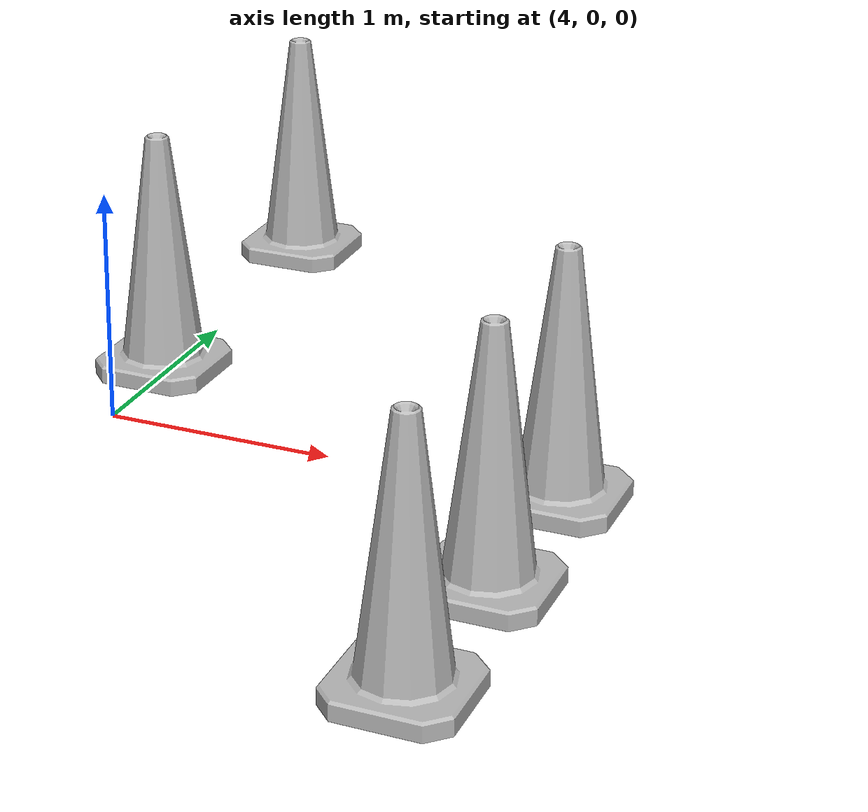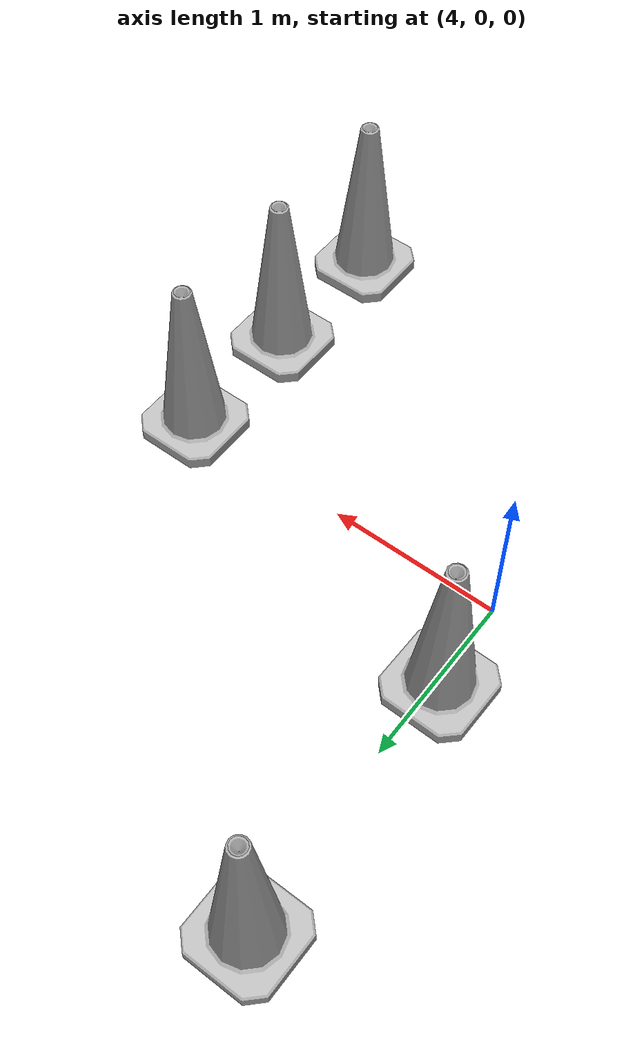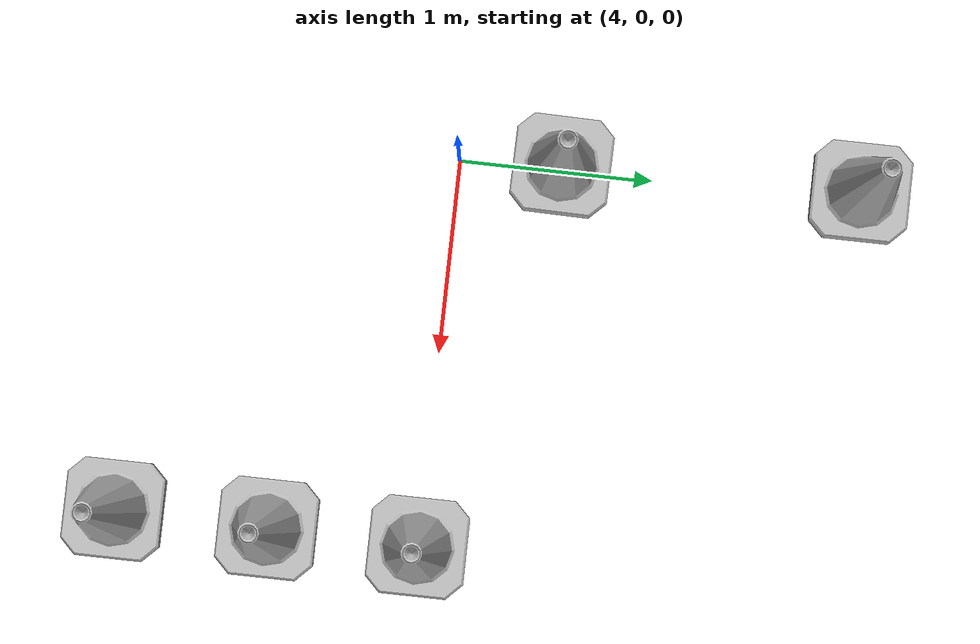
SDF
<sdf version="1.4">
 <world name="default">
  <model name="Construction Cone_1">
   <link name="link">
    <collision name="collision">
     <geometry>
      <mesh><scale>10 10 10</scale><uri>model://construction_cone/meshes/construction_cone.dae</uri></mesh>
     </geometry>
    </collision>
    <visual name="visual">
     <geometry>
      <mesh><scale>10 10 10</scale><uri>model://construction_cone/meshes/construction_cone.dae</uri></mesh>
     </geometry>
    </visual>
    <velocity_decay><linear>0</linear><angular>0</angular></velocity_decay>
    <inertial>
     <inertia><ixx>1</ixx><ixy>0</ixy><ixz>0</ixz><iyy>1</iyy><iyz>0</iyz><izz>1</izz></inertia>
     <mass>1</mass>
    </inertial>
   </link>
   <pose>3.97138 0.526479 -0.000878 6e-06 1e-06 -0.016596</pose>
   <static>0</static>
  </model>
  <model name="Construction Cone_3">
   <link name="link">
    <collision name="collision">
     <geometry>
      <mesh><scale>10 10 10</scale><uri>model://construction_cone/meshes/construction_cone.dae</uri></mesh>
     </geometry>
    </collision>
    <visual name="visual">
     <geometry>
      <mesh><scale>10 10 10</scale><uri>model://construction_cone/meshes/construction_cone.dae</uri></mesh>
     </geometry>
    </visual>
    <velocity_decay><linear>0</linear><angular>0</angular></velocity_decay>
    <inertial>
     <inertia><ixx>1</ixx><ixy>0</ixy><ixz>0</ixz><iyy>1</iyy><iyz>0</iyz><izz>1</izz></inertia>
     <mass>1</mass>
    </inertial>
   </link>
   <pose>3.94204 2.07112 -0.000878 6e-06 1e-06 -1e-06</pose>
   <static>0</static>
  </model>
  <model name="Construction Cone_5">
   <link name="link">
    <collision name="collision">
     <geometry>
      <mesh><scale>10 10 10</scale><uri>model://construction_cone/meshes/construction_cone.dae</uri></mesh>
     </geometry>
    </collision>
    <visual name="visual">
     <geometry>
      <mesh><scale>10 10 10</scale><uri>model://construction_cone/meshes/construction_cone.dae</uri></mesh>
     </geometry>
    </visual>
    <velocity_decay><linear>0</linear><angular>0</angular></velocity_decay>
    <inertial>
     <inertia><ixx>1</ixx><ixy>0</ixy><ixz>0</ixz><iyy>1</iyy><iyz>0</iyz><izz>1</izz></inertia>
     <mass>1</mass>
    </inertial>
   </link>
   <pose>6 0 -0.000878 6e-06 1e-06 -1e-06</pose>
   <static>0</static>
  </model>
  <model name="Construction Cone_6">
   <link name="link">
    <collision name="collision">
     <geometry>
      <mesh><scale>10 10 10</scale><uri>model://construction_cone/meshes/construction_cone.dae</uri></mesh>
     </geometry>
    </collision>
    <visual name="visual">
     <geometry>
      <mesh><scale>10 10 10</scale><uri>model://construction_cone/meshes/construction_cone.dae</uri></mesh>
     </geometry>
    </visual>
    <velocity_decay><linear>0</linear><angular>0</angular></velocity_decay>
    <inertial>
     <inertia><ixx>1</ixx><ixy>0</ixy><ixz>0</ixz><iyy>1</iyy><iyz>0</iyz><izz>1</izz></inertia>
     <mass>1</mass>
    </inertial>
   </link>
   <pose>5.98856 -0.775895 -0.000878 6e-06 1e-06 -1e-06</pose>
   <static>0</static>
  </model>
  <model name="Construction Cone_7">
   <link name="link">
    <collision name="collision">
     <geometry>
      <mesh><scale>10 10 10</scale><uri>model://construction_cone/meshes/construction_cone.dae</uri></mesh>
     </geometry>
    </collision>
    <visual name="visual">
     <geometry>
      <mesh><scale>10 10 10</scale><uri>model://construction_cone/meshes/construction_cone.dae</uri></mesh>
     </geometry>
    </visual>
    <velocity_decay><linear>0</linear><angular>0</angular></velocity_decay>
    <inertial>
     <inertia><ixx>1</ixx><ixy>0</ixy><ixz>0</ixz><iyy>1</iyy><iyz>0</iyz><izz>1</izz></inertia>
     <mass>1</mass>
    </inertial>
   </link>
   <pose>5.97537 -1.56878 -0.000878 6e-06 1e-06 -1e-06</pose>
   <static>0</static>
  </model>
 </world>
</sdf>
